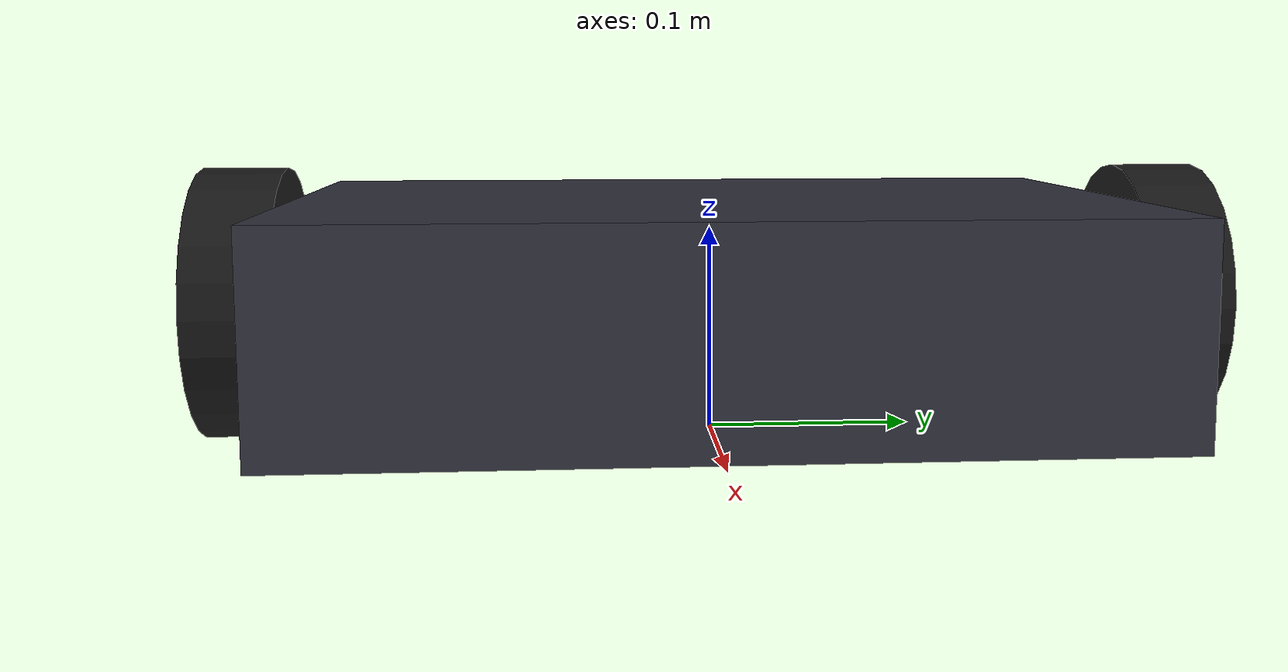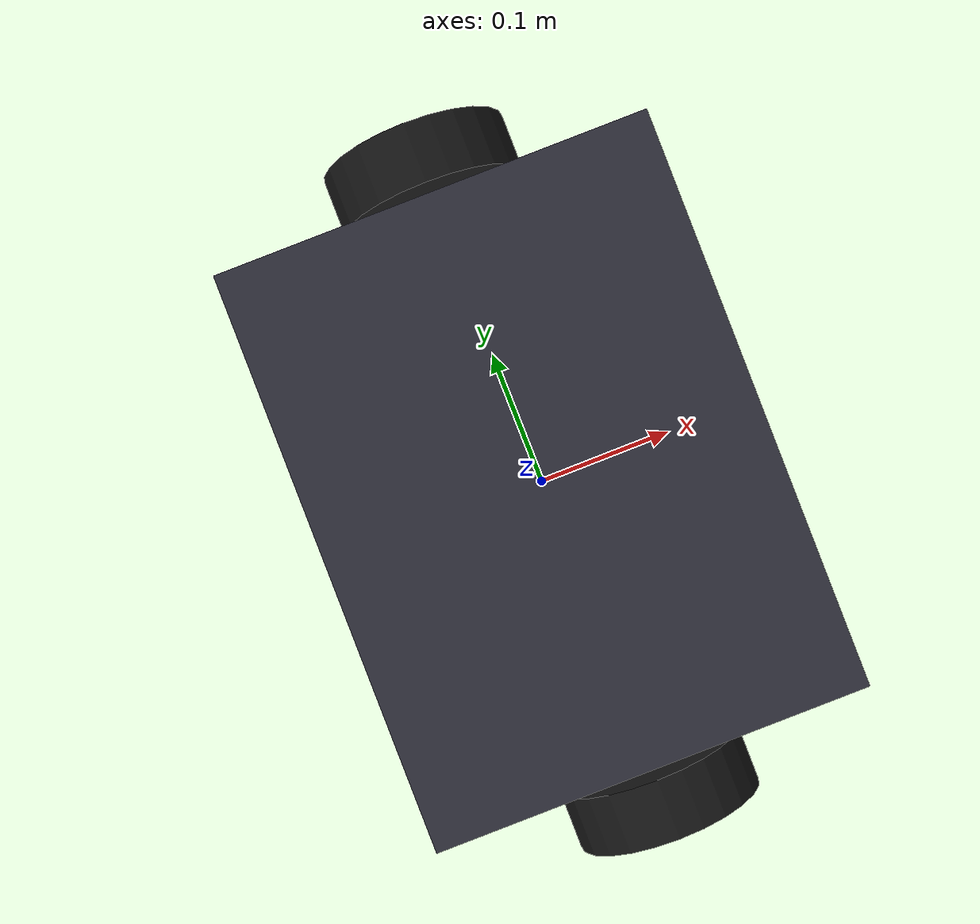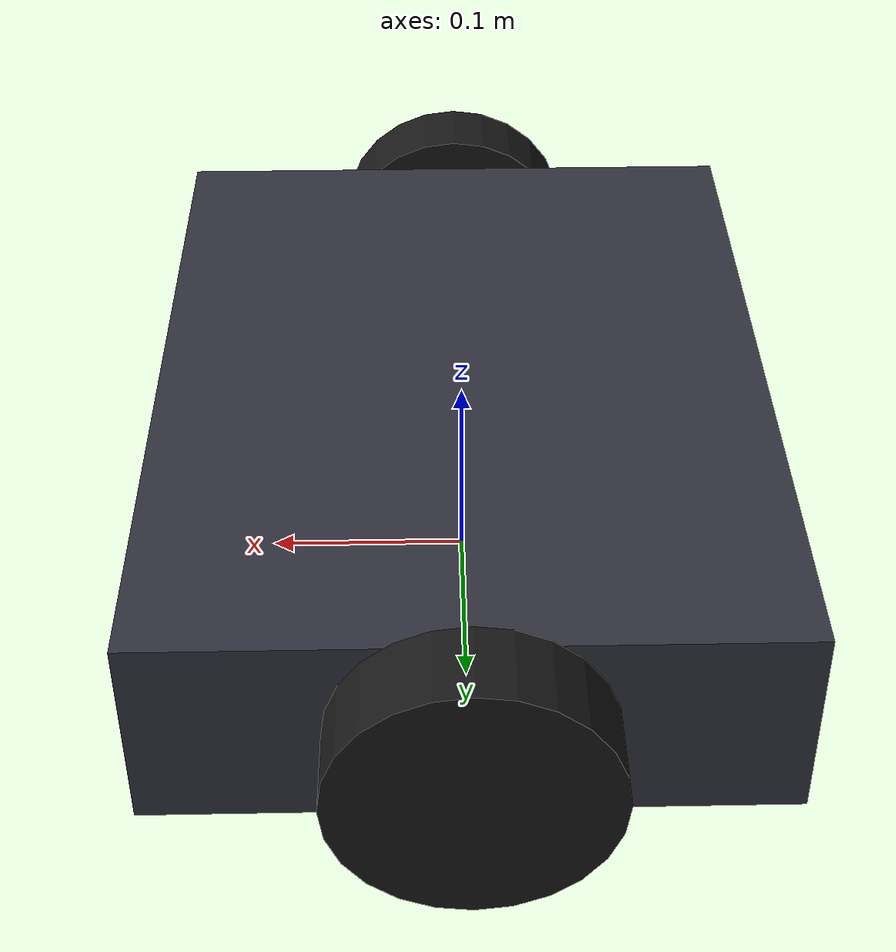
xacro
<?xml version="1.0"?>
<robot name="mobile_robot" xmlns:xacro="http://www.ros.org/wiki/xacro">

  <!-- 파라미터 -->
  <xacro:property name="wheel_radius" value="0.065"/> <!-- Ø130mm/2 -->
  <xacro:property name="wheel_length" value="0.4465"/> <!-- 바퀴 중심 간 거리 -->
  <xacro:property name="base_size_x"  value="0.30"/>
  <xacro:property name="base_size_y"  value="0.40"/>
  <xacro:property name="base_size_z"  value="0.10"/>

  <!-- 관성 없는 루트(표준) -->
  <link name="base_footprint"/>
  <joint name="base_footprint_to_base_link" type="fixed">
    <parent link="base_footprint"/>
    <child  link="base_link"/>
    <!-- 바닥 접점 기준으로 베이스가 바퀴 중심 높이에 오도록 -->
    <origin xyz="0 0 ${wheel_radius}" rpy="0 0 0"/>
  </joint>

  <!-- 베이스 -->
  <link name="base_link">
    <visual>
      <origin xyz="0 0 0" rpy="0 0 0"/>
      <geometry><box size="${base_size_x} ${base_size_y} ${base_size_z}"/></geometry>
      <material name="chassis"><color rgba="0.2 0.2 0.25 1.0"/></material>
    </visual>
    <collision>
      <origin xyz="0 0 0" rpy="0 0 0"/>
      <geometry><box size="${base_size_x} ${base_size_y} ${base_size_z}"/></geometry>
    </collision>
    <inertial>
      <origin xyz="0 0 0" rpy="0 0 0"/>
      <mass value="10.0"/>
      <inertia ixx="0.2" iyy="0.2" izz="0.2" ixy="0" ixz="0" iyz="0"/>
    </inertial>
  </link>

  <!-- 왼쪽 바퀴 -->
  <link name="wheel_left_link">
    <visual>
      <!-- 실린더 축(z)을 y축으로 회전 -->
      <origin xyz="0 0 0" rpy="1.57079632679 0 0"/>
      <geometry><cylinder radius="${wheel_radius}" length="0.04"/></geometry>
      <material name="wheel"><color rgba="0.1 0.1 0.1 1.0"/></material>
    </visual>
    <collision>
      <origin xyz="0 0 0" rpy="1.57079632679 0 0"/>
      <geometry><cylinder radius="${wheel_radius}" length="0.04"/></geometry>
    </collision>
    <inertial>
      <origin xyz="0 0 0" rpy="0 0 0"/>
      <mass value="1.0"/>
      <inertia ixx="0.01" iyy="0.01" izz="0.01" ixy="0" ixz="0" iyz="0"/>
    </inertial>
  </link>

  <!-- 오른쪽 바퀴 -->
  <link name="wheel_right_link">
    <visual>
      <origin xyz="0 0 0" rpy="1.57079632679 0 0"/>
      <geometry><cylinder radius="${wheel_radius}" length="0.04"/></geometry>
      <material name="wheel"/>
    </visual>
    <collision>
      <origin xyz="0 0 0" rpy="1.57079632679 0 0"/>
      <geometry><cylinder radius="${wheel_radius}" length="0.04"/></geometry>
    </collision>
    <inertial>
      <origin xyz="0 0 0" rpy="0 0 0"/>
      <mass value="1.0"/>
      <inertia ixx="0.01" iyy="0.01" izz="0.01" ixy="0" ixz="0" iyz="0"/>
    </inertial>
  </link>

  <!-- 힌지(y축 회전) : 바퀴 위치는 joint에서만 지정 -->
  <joint name="wheel_left_joint" type="continuous">
    <parent link="base_link"/>
    <child  link="wheel_left_link"/>
    <origin xyz="0 ${wheel_length/2} 0" rpy="0 0 0"/>
    <axis xyz="0 1 0"/>
  </joint>

  <joint name="wheel_right_joint" type="continuous">
    <parent link="base_link"/>
    <child  link="wheel_right_link"/>
    <origin xyz="0 ${-wheel_length/2} 0" rpy="0 0 0"/>
    <axis xyz="0 1 0"/>
  </joint>

</robot>
